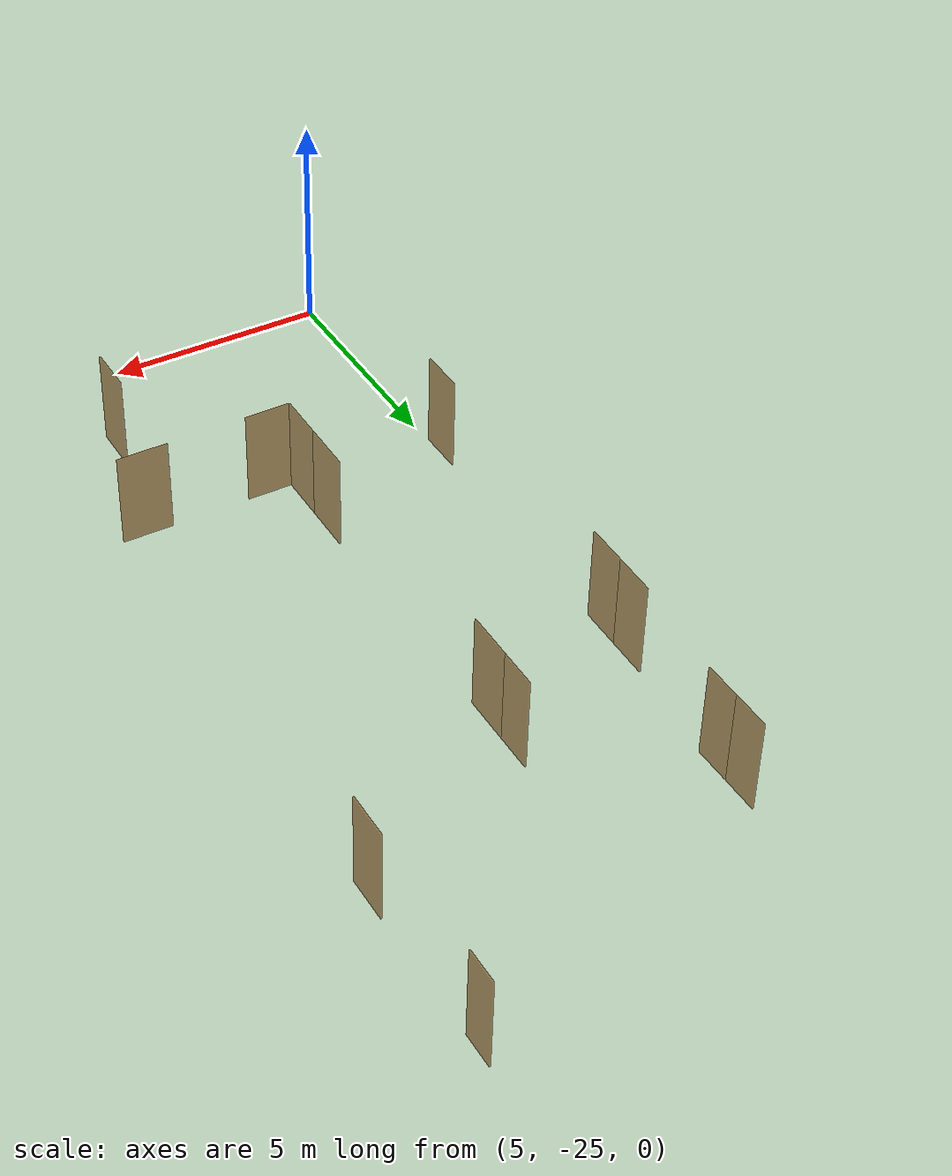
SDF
<sdf version="1.7">
 <world name="coworking">
  <physics name="10ms" type="ode">
   <max_step_size>0.01</max_step_size>
   <real_time_factor>1.0</real_time_factor>
  </physics>
  <plugin filename="libgz-sim-physics-system.so" name="gz::sim::systems::Physics"/>
  <plugin filename="libgz-sim-user-commands-system.so" name="gz::sim::systems::UserCommands"/>
  <plugin filename="libgz-sim-scene-broadcaster-system.so" name="gz::sim::systems::SceneBroadcaster"/>
  <plugin filename="libdoor.so" name="door"/>
  <plugin filename="liblift.so" name="lift"/>
  <scene><ambient>1 1 1</ambient><background>0.8 0.8 0.8</background><grid>false</grid></scene>
  <light type="directional" name="sun">
   <pose>0 0 10 0 0 0</pose>
   <diffuse>1 1 1 1</diffuse>
   <specular>0.2 0.2 0.2 1</specular>
   <attenuation>
    <range>1000</range>
    <constant>0.09</constant>
    <linear>0.001</linear>
    <quadratic>0.001</quadratic>
   </attenuation>
   <direction>-0.5 0.1 -0.9</direction>
  </light>
  <model name="null">
   <pose>12.48811398566685 -4.525056904726784 0.0 0 0 -1.570014642685069</pose>
   <link name="right">
    <pose>0 0 1.11 0 0 0</pose>
    <visual name="right_visual">
     <geometry><box><size>0.7769928112189544 0.03 2.2</size></box></geometry>
     <material>
      <ambient>0.5 0.25 0 0.6</ambient>
      <diffuse>0.5 0.25 0 0.6</diffuse>
      <pbr><metal><metalness>0.0</metalness></metal></pbr>
     </material>
    </visual>
    <collision name="right_collision">
     <geometry><box><size>0.7769928112189544 0.03 2.2</size></box></geometry>
     <surface><contact><collide_bitmask>0x02</collide_bitmask></contact></surface>
    </collision>
    <inertial>
     <mass>50.0</mass>
     <inertia><ixx>20.17041666666667</ixx><iyy>22.682157619524727</iyy><izz>2.519240952858057</izz></inertia>
    </inertial>
   </link>
   <joint name="right_joint" type="revolute">
    <parent>world</parent>
    <child>right</child>
    <axis><xyz>0 0 -1</xyz><limit><lower>0</lower><upper>1.57</upper></limit></axis>
    <pose>0.3934964056094772 0 0 0 0 0</pose>
   </joint>
   <plugin name="register_component" filename="libregister_component.so">
    <component name="Door">
     <v_max_door>0.5</v_max_door>
     <a_max_door>0.3</a_max_door>
     <a_nom_door>0.15</a_nom_door>
     <dx_min_door>0.01</dx_min_door>
     <f_max_door>500.0</f_max_door>
     <ros_interface>true</ros_interface>
     <door name="null" type="SwingDoor" left_joint_name="empty_joint" right_joint_name="right_joint"/>
    </component>
   </plugin>
  </model>
  <model name="null">
   <pose>8.32998443808367 -11.225580661847921 0.0 0 0 1.5667836455427138</pose>
   <link name="right">
    <pose>0 0 1.11 0 0 0</pose>
    <visual name="right_visual">
     <geometry><box><size>1.100640723700182 0.03 2.2</size></box></geometry>
     <material>
      <ambient>0.5 0.25 0 0.6</ambient>
      <diffuse>0.5 0.25 0 0.6</diffuse>
      <pbr><metal><metalness>0.0</metalness></metal></pbr>
     </material>
    </visual>
    <collision name="right_collision">
     <geometry><box><size>1.100640723700182 0.03 2.2</size></box></geometry>
     <surface><contact><collide_bitmask>0x02</collide_bitmask></contact></surface>
    </collision>
    <inertial>
     <mass>50.0</mass>
     <inertia><ixx>20.17041666666667</ixx><iyy>25.214208344446924</iyy><izz>5.051291677780252</izz></inertia>
    </inertial>
   </link>
   <joint name="right_joint" type="revolute">
    <parent>world</parent>
    <child>right</child>
    <axis><xyz>0 0 -1</xyz><limit><lower>0</lower><upper>1.57</upper></limit></axis>
    <pose>0.555320361850091 0 0 0 0 0</pose>
   </joint>
   <plugin name="register_component" filename="libregister_component.so">
    <component name="Door">
     <v_max_door>0.5</v_max_door>
     <a_max_door>0.3</a_max_door>
     <a_nom_door>0.15</a_nom_door>
     <dx_min_door>0.01</dx_min_door>
     <f_max_door>500.0</f_max_door>
     <ros_interface>true</ros_interface>
     <door name="null" type="SwingDoor" left_joint_name="empty_joint" right_joint_name="right_joint"/>
    </component>
   </plugin>
  </model>
  <model name="null">
   <pose>8.85873140091677 -19.483425025654032 0.0 0 0 -3.1394034632642893</pose>
   <link name="right">
    <pose>0 0 1.11 0 0 0</pose>
    <visual name="right_visual">
     <geometry><box><size>1.026607640762353 0.03 2.2</size></box></geometry>
     <material>
      <ambient>0.5 0.25 0 0.6</ambient>
      <diffuse>0.5 0.25 0 0.6</diffuse>
      <pbr><metal><metalness>0.0</metalness></metal></pbr>
     </material>
    </visual>
    <collision name="right_collision">
     <geometry><box><size>1.026607640762353 0.03 2.2</size></box></geometry>
     <surface><contact><collide_bitmask>0x02</collide_bitmask></contact></surface>
    </collision>
    <inertial>
     <mass>50.0</mass>
     <inertia><ixx>20.17041666666667</ixx><iyy>24.558013533631858</iyy><izz>4.3950968669651855</izz></inertia>
    </inertial>
   </link>
   <joint name="right_joint" type="revolute">
    <parent>world</parent>
    <child>right</child>
    <axis><xyz>0 0 -1</xyz><limit><lower>0</lower><upper>1.57</upper></limit></axis>
    <pose>0.5183038203811765 0 0 0 0 0</pose>
   </joint>
   <plugin name="register_component" filename="libregister_component.so">
    <component name="Door">
     <v_max_door>0.5</v_max_door>
     <a_max_door>0.3</a_max_door>
     <a_nom_door>0.15</a_nom_door>
     <dx_min_door>0.01</dx_min_door>
     <f_max_door>500.0</f_max_door>
     <ros_interface>true</ros_interface>
     <door name="null" type="SwingDoor" left_joint_name="empty_joint" right_joint_name="right_joint"/>
    </component>
   </plugin>
  </model>
  <model name="null">
   <pose>8.342096643088393 -18.93821175251824 0.0 0 0 1.567743665190054</pose>
   <link name="right">
    <pose>0 0 1.11 0 0 0</pose>
    <visual name="right_visual">
     <geometry><box><size>1.0827009671731607 0.03 2.2</size></box></geometry>
     <material>
      <ambient>0.5 0.25 0 0.6</ambient>
      <diffuse>0.5 0.25 0 0.6</diffuse>
      <pbr><metal><metalness>0.0</metalness></metal></pbr>
     </material>
    </visual>
    <collision name="right_collision">
     <geometry><box><size>1.0827009671731607 0.03 2.2</size></box></geometry>
     <surface><contact><collide_bitmask>0x02</collide_bitmask></contact></surface>
    </collision>
    <inertial>
     <mass>50.0</mass>
     <inertia><ixx>20.17041666666667</ixx><iyy>25.05100576799041</iyy><izz>4.8880891013237395</izz></inertia>
    </inertial>
   </link>
   <joint name="right_joint" type="revolute">
    <parent>world</parent>
    <child>right</child>
    <axis><xyz>0 0 -1</xyz><limit><lower>0</lower><upper>1.57</upper></limit></axis>
    <pose>0.5463504835865803 0 0 0 0 0</pose>
   </joint>
   <plugin name="register_component" filename="libregister_component.so">
    <component name="Door">
     <v_max_door>0.5</v_max_door>
     <a_max_door>0.3</a_max_door>
     <a_nom_door>0.15</a_nom_door>
     <dx_min_door>0.01</dx_min_door>
     <f_max_door>500.0</f_max_door>
     <ros_interface>true</ros_interface>
     <door name="null" type="SwingDoor" left_joint_name="empty_joint" right_joint_name="right_joint"/>
    </component>
   </plugin>
  </model>
  <model name="null">
   <pose>4.942470010270433 -18.908457560427067 0.0 0 0 1.5727212646666853</pose>
   <link name="right">
    <pose>0 0 1.11 0 0 0</pose>
    <visual name="right_visual">
     <geometry><box><size>1.048179419160907 0.03 2.2</size></box></geometry>
     <material>
      <ambient>0.5 0.25 0 0.6</ambient>
      <diffuse>0.5 0.25 0 0.6</diffuse>
      <pbr><metal><metalness>0.0</metalness></metal></pbr>
     </material>
    </visual>
    <collision name="right_collision">
     <geometry><box><size>1.048179419160907 0.03 2.2</size></box></geometry>
     <surface><contact><collide_bitmask>0x02</collide_bitmask></contact></surface>
    </collision>
    <inertial>
     <mass>50.0</mass>
     <inertia><ixx>20.17041666666667</ixx><iyy>24.744500394802074</iyy><izz>4.581583728135403</izz></inertia>
    </inertial>
   </link>
   <joint name="right_joint" type="revolute">
    <parent>world</parent>
    <child>right</child>
    <axis><xyz>0 0 1</xyz><limit><lower>0</lower><upper>1.57</upper></limit></axis>
    <pose>0.5290897095804535 0 0 0 0 0</pose>
   </joint>
   <plugin name="register_component" filename="libregister_component.so">
    <component name="Door">
     <v_max_door>0.5</v_max_door>
     <a_max_door>0.3</a_max_door>
     <a_nom_door>0.15</a_nom_door>
     <dx_min_door>0.01</dx_min_door>
     <f_max_door>500.0</f_max_door>
     <ros_interface>true</ros_interface>
     <door name="null" type="SwingDoor" left_joint_name="empty_joint" right_joint_name="right_joint"/>
    </component>
   </plugin>
  </model>
  <model name="null">
   <pose>8.345849239334212 -17.80328037171745 0.0 0 0 -1.57433833430291</pose>
   <link name="right">
    <pose>0 0 1.11 0 0 0</pose>
    <visual name="right_visual">
     <geometry><box><size>1.167174270023015 0.03 2.2</size></box></geometry>
     <material>
      <ambient>0.5 0.25 0 0.6</ambient>
      <diffuse>0.5 0.25 0 0.6</diffuse>
      <pbr><metal><metalness>0.0</metalness></metal></pbr>
     </material>
    </visual>
    <collision name="right_collision">
     <geometry><box><size>1.167174270023015 0.03 2.2</size></box></geometry>
     <surface><contact><collide_bitmask>0x02</collide_bitmask></contact></surface>
    </collision>
    <inertial>
     <mass>50.0</mass>
     <inertia><ixx>20.17041666666667</ixx><iyy>25.84289906918233</iyy><izz>5.679982402515658</izz></inertia>
    </inertial>
   </link>
   <joint name="right_joint" type="revolute">
    <parent>world</parent>
    <child>right</child>
    <axis><xyz>0 0 1</xyz><limit><lower>0</lower><upper>1.57</upper></limit></axis>
    <pose>0.5885871350115075 0 0 0 0 0</pose>
   </joint>
   <plugin name="register_component" filename="libregister_component.so">
    <component name="Door">
     <v_max_door>0.5</v_max_door>
     <a_max_door>0.3</a_max_door>
     <a_nom_door>0.15</a_nom_door>
     <dx_min_door>0.01</dx_min_door>
     <f_max_door>500.0</f_max_door>
     <ros_interface>true</ros_interface>
     <door name="null" type="SwingDoor" left_joint_name="empty_joint" right_joint_name="right_joint"/>
    </component>
   </plugin>
  </model>
  <model name="null">
   <pose>11.167165930487677 -22.41072351059881 0.0 0 0 -1.5691788397239672</pose>
   <link name="right">
    <pose>0 0 1.11 0 0 0</pose>
    <visual name="right_visual">
     <geometry><box><size>1.1056367032209087 0.03 2.2</size></box></geometry>
     <material>
      <ambient>0.5 0.25 0 0.6</ambient>
      <diffuse>0.5 0.25 0 0.6</diffuse>
      <pbr><metal><metalness>0.0</metalness></metal></pbr>
     </material>
    </visual>
    <collision name="right_collision">
     <geometry><box><size>1.1056367032209087 0.03 2.2</size></box></geometry>
     <surface><contact><collide_bitmask>0x02</collide_bitmask></contact></surface>
    </collision>
    <inertial>
     <mass>50.0</mass>
     <inertia><ixx>20.17041666666667</ixx><iyy>25.260135497955</iyy><izz>5.097218831288331</izz></inertia>
    </inertial>
   </link>
   <joint name="right_joint" type="revolute">
    <parent>world</parent>
    <child>right</child>
    <axis><xyz>0 0 -1</xyz><limit><lower>0</lower><upper>1.57</upper></limit></axis>
    <pose>0.5578183516104543 0 0 0 0 0</pose>
   </joint>
   <plugin name="register_component" filename="libregister_component.so">
    <component name="Door">
     <v_max_door>0.5</v_max_door>
     <a_max_door>0.3</a_max_door>
     <a_nom_door>0.15</a_nom_door>
     <dx_min_door>0.01</dx_min_door>
     <f_max_door>500.0</f_max_door>
     <ros_interface>true</ros_interface>
     <door name="null" type="SwingDoor" left_joint_name="empty_joint" right_joint_name="right_joint"/>
    </component>
   </plugin>
  </model>
  <model name="null">
   <pose>11.745578402104245 -19.475229464818447 0.0 0 0 -3.1405189456970897</pose>
   <link name="right">
    <pose>0 0 1.11 0 0 0</pose>
    <visual name="right_visual">
     <geometry><box><size>1.1486301382521236 0.03 2.2</size></box></geometry>
     <material>
      <ambient>0.5 0.25 0 0.6</ambient>
      <diffuse>0.5 0.25 0 0.6</diffuse>
      <pbr><metal><metalness>0.0</metalness></metal></pbr>
     </material>
    </visual>
    <collision name="right_collision">
     <geometry><box><size>1.1486301382521236 0.03 2.2</size></box></geometry>
     <surface><contact><collide_bitmask>0x02</collide_bitmask></contact></surface>
    </collision>
    <inertial>
     <mass>50.0</mass>
     <inertia><ixx>20.17041666666667</ixx><iyy>25.663963310421224</iyy><izz>5.501046643754552</izz></inertia>
    </inertial>
   </link>
   <joint name="right_joint" type="revolute">
    <parent>world</parent>
    <child>right</child>
    <axis><xyz>0 0 -1</xyz><limit><lower>0</lower><upper>1.57</upper></limit></axis>
    <pose>0.5793150691260618 0 0 0 0 0</pose>
   </joint>
   <plugin name="register_component" filename="libregister_component.so">
    <component name="Door">
     <v_max_door>0.5</v_max_door>
     <a_max_door>0.3</a_max_door>
     <a_nom_door>0.15</a_nom_door>
     <dx_min_door>0.01</dx_min_door>
     <f_max_door>500.0</f_max_door>
     <ros_interface>true</ros_interface>
     <door name="null" type="SwingDoor" left_joint_name="empty_joint" right_joint_name="right_joint"/>
    </component>
   </plugin>
  </model>
  <model name="null">
   <pose>12.531320107469812 -8.33521346563932 0.0 0 0 1.5707963267948966</pose>
   <link name="right">
    <pose>0 0 1.11 0 0 0</pose>
    <visual name="right_visual">
     <geometry><box><size>1.0232421743362037 0.03 2.2</size></box></geometry>
     <material>
      <ambient>0.5 0.25 0 0.6</ambient>
      <diffuse>0.5 0.25 0 0.6</diffuse>
      <pbr><metal><metalness>0.0</metalness></metal></pbr>
     </material>
    </visual>
    <collision name="right_collision">
     <geometry><box><size>1.0232421743362037 0.03 2.2</size></box></geometry>
     <surface><contact><collide_bitmask>0x02</collide_bitmask></contact></surface>
    </collision>
    <inertial>
     <mass>50.0</mass>
     <inertia><ixx>20.17041666666667</ixx><iyy>24.52926894725118</iyy><izz>4.366352280584508</izz></inertia>
    </inertial>
   </link>
   <joint name="right_joint" type="revolute">
    <parent>world</parent>
    <child>right</child>
    <axis><xyz>0 0 1</xyz><limit><lower>0</lower><upper>1.57</upper></limit></axis>
    <pose>0.5166210871681018 0 0 0 0 0</pose>
   </joint>
   <plugin name="register_component" filename="libregister_component.so">
    <component name="Door">
     <v_max_door>0.5</v_max_door>
     <a_max_door>0.3</a_max_door>
     <a_nom_door>0.15</a_nom_door>
     <dx_min_door>0.01</dx_min_door>
     <f_max_door>500.0</f_max_door>
     <ros_interface>true</ros_interface>
     <door name="null" type="SwingDoor" left_joint_name="empty_joint" right_joint_name="right_joint"/>
    </component>
   </plugin>
  </model>
  <model name="null">
   <pose>8.333853234941838 -10.225134401514342 0.0 0 0 -1.5744817006077487</pose>
   <link name="right">
    <pose>0 0 1.11 0 0 0</pose>
    <visual name="right_visual">
     <geometry><box><size>0.8802667842933769 0.03 2.2</size></box></geometry>
     <material>
      <ambient>0.5 0.25 0 0.6</ambient>
      <diffuse>0.5 0.25 0 0.6</diffuse>
      <pbr><metal><metalness>0.0</metalness></metal></pbr>
     </material>
    </visual>
    <collision name="right_collision">
     <geometry><box><size>0.8802667842933769 0.03 2.2</size></box></geometry>
     <surface><contact><collide_bitmask>0x02</collide_bitmask></contact></surface>
    </collision>
    <inertial>
     <mass>50.0</mass>
     <inertia><ixx>20.17041666666667</ixx><iyy>23.395290048042515</iyy><izz>3.232373381375844</izz></inertia>
    </inertial>
   </link>
   <joint name="right_joint" type="revolute">
    <parent>world</parent>
    <child>right</child>
    <axis><xyz>0 0 1</xyz><limit><lower>0</lower><upper>1.57</upper></limit></axis>
    <pose>0.44513339214668846 0 0 0 0 0</pose>
   </joint>
   <plugin name="register_component" filename="libregister_component.so">
    <component name="Door">
     <v_max_door>0.5</v_max_door>
     <a_max_door>0.3</a_max_door>
     <a_nom_door>0.15</a_nom_door>
     <dx_min_door>0.01</dx_min_door>
     <f_max_door>500.0</f_max_door>
     <ros_interface>true</ros_interface>
     <door name="null" type="SwingDoor" left_joint_name="empty_joint" right_joint_name="right_joint"/>
    </component>
   </plugin>
  </model>
  <model name="null">
   <pose>5.197646554986163 -7.683512584281992 0.0 0 0 1.5811935104813961</pose>
   <link name="right">
    <pose>0.4322623004888328 0 1.11 0 0 0</pose>
    <visual name="right_visual">
     <geometry><box><size>0.8545246009776656 0.03 2.2</size></box></geometry>
     <material>
      <ambient>0.5 0.25 0 0.6</ambient>
      <diffuse>0.5 0.25 0 0.6</diffuse>
      <pbr><metal><metalness>0.0</metalness></metal></pbr>
     </material>
    </visual>
    <collision name="right_collision">
     <geometry><box><size>0.8545246009776656 0.03 2.2</size></box></geometry>
     <surface><contact><collide_bitmask>0x02</collide_bitmask></contact></surface>
    </collision>
    <inertial>
     <mass>50.0</mass>
     <inertia><ixx>20.17041666666667</ixx><iyy>23.209217890316832</iyy><izz>3.0463012236501608</izz></inertia>
    </inertial>
   </link>
   <joint name="right_joint" type="prismatic">
    <parent>world</parent>
    <child>right</child>
    <axis>
     <xyz>1 0 0</xyz>
     <limit><lower>0.0</lower><upper>0.8645246009776656</upper><effort>500.0</effort></limit>
    </axis>
   </joint>
   <link name="left">
    <pose>-0.4322623004888328 0 1.11 0 0 0</pose>
    <visual name="left_visual">
     <geometry><box><size>0.8545246009776656 0.03 2.2</size></box></geometry>
     <material>
      <ambient>0.5 0.25 0 0.6</ambient>
      <diffuse>0.5 0.25 0 0.6</diffuse>
      <pbr><metal><metalness>0.0</metalness></metal></pbr>
     </material>
    </visual>
    <collision name="left_collision">
     <geometry><box><size>0.8545246009776656 0.03 2.2</size></box></geometry>
     <surface><contact><collide_bitmask>0x02</collide_bitmask></contact></surface>
    </collision>
    <inertial>
     <mass>50.0</mass>
     <inertia><ixx>20.17041666666667</ixx><iyy>23.209217890316832</iyy><izz>3.0463012236501608</izz></inertia>
    </inertial>
   </link>
   <joint name="left_joint" type="prismatic">
    <parent>world</parent>
    <child>left</child>
    <axis>
     <xyz>1 0 0</xyz>
     <limit><lower>-0.8645246009776656</lower><upper>0.0</upper><effort>500.0</effort></limit>
    </axis>
   </joint>
   <plugin name="register_component" filename="libregister_component.so">
    <component name="Door">
     <v_max_door>0.2</v_max_door>
     <a_max_door>0.2</a_max_door>
     <a_nom_door>0.08</a_nom_door>
     <dx_min_door>0.001</dx_min_door>
     <f_max_door>100.0</f_max_door>
     <ros_interface>true</ros_interface>
     <door name="null" type="DoubleSlidingDoor" left_joint_name="left_joint" right_joint_name="right_joint"/>
    </component>
   </plugin>
  </model>
  <model name="null">
   <pose>4.975231747622368 -11.884321933247499 0.0 0 0 1.5601283736830944</pose>
   <link name="right">
    <pose>0.4850455383707938 0 1.11 0 0 0</pose>
    <visual name="right_visual">
     <geometry><box><size>0.9600910767415876 0.03 2.2</size></box></geometry>
     <material>
      <ambient>0.5 0.25 0 0.6</ambient>
      <diffuse>0.5 0.25 0 0.6</diffuse>
      <pbr><metal><metalness>0.0</metalness></metal></pbr>
     </material>
    </visual>
    <collision name="right_collision">
     <geometry><box><size>0.9600910767415876 0.03 2.2</size></box></geometry>
     <surface><contact><collide_bitmask>0x02</collide_bitmask></contact></surface>
    </collision>
    <inertial>
     <mass>50.0</mass>
     <inertia><ixx>20.17041666666667</ixx><iyy>24.00739531516176</iyy><izz>3.844478648495088</izz></inertia>
    </inertial>
   </link>
   <joint name="right_joint" type="prismatic">
    <parent>world</parent>
    <child>right</child>
    <axis>
     <xyz>1 0 0</xyz>
     <limit><lower>0.0</lower><upper>0.9700910767415876</upper><effort>500.0</effort></limit>
    </axis>
   </joint>
   <link name="left">
    <pose>-0.4850455383707938 0 1.11 0 0 0</pose>
    <visual name="left_visual">
     <geometry><box><size>0.9600910767415876 0.03 2.2</size></box></geometry>
     <material>
      <ambient>0.5 0.25 0 0.6</ambient>
      <diffuse>0.5 0.25 0 0.6</diffuse>
      <pbr><metal><metalness>0.0</metalness></metal></pbr>
     </material>
    </visual>
    <collision name="left_collision">
     <geometry><box><size>0.9600910767415876 0.03 2.2</size></box></geometry>
     <surface><contact><collide_bitmask>0x02</collide_bitmask></contact></surface>
    </collision>
    <inertial>
     <mass>50.0</mass>
     <inertia><ixx>20.17041666666667</ixx><iyy>24.00739531516176</iyy><izz>3.844478648495088</izz></inertia>
    </inertial>
   </link>
   <joint name="left_joint" type="prismatic">
    <parent>world</parent>
    <child>left</child>
    <axis>
     <xyz>1 0 0</xyz>
     <limit><lower>-0.9700910767415876</lower><upper>0.0</upper><effort>500.0</effort></limit>
    </axis>
   </joint>
   <plugin name="register_component" filename="libregister_component.so">
    <component name="Door">
     <v_max_door>0.2</v_max_door>
     <a_max_door>0.2</a_max_door>
     <a_nom_door>0.08</a_nom_door>
     <dx_min_door>0.001</dx_min_door>
     <f_max_door>100.0</f_max_door>
     <ros_interface>true</ros_interface>
     <door name="null" type="DoubleSlidingDoor" left_joint_name="left_joint" right_joint_name="right_joint"/>
    </component>
   </plugin>
  </model>
  <rmf_charger_waypoints name="charger_waypoints"/>
 </world>
</sdf>
